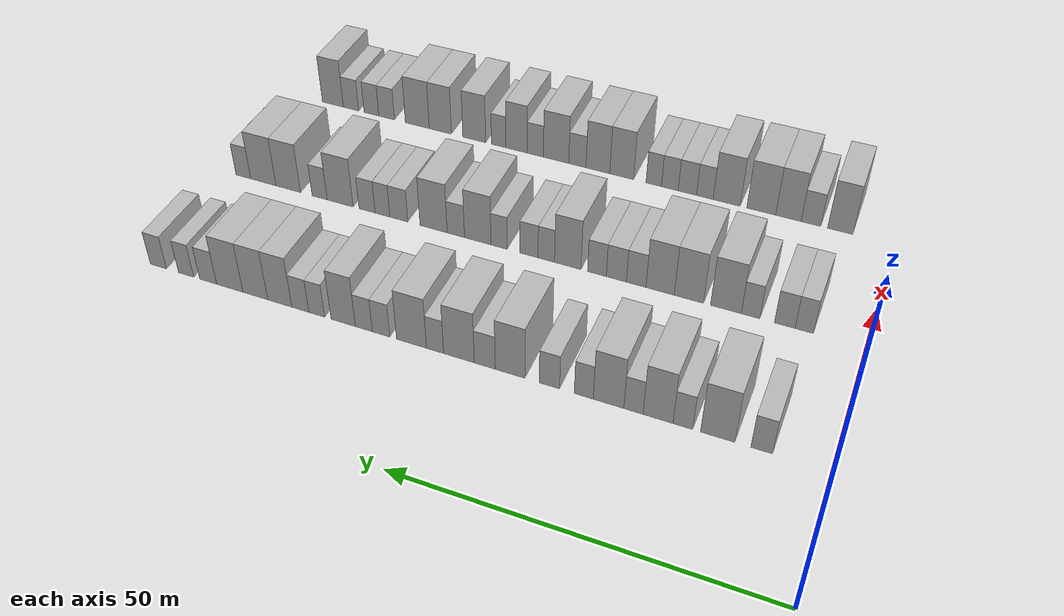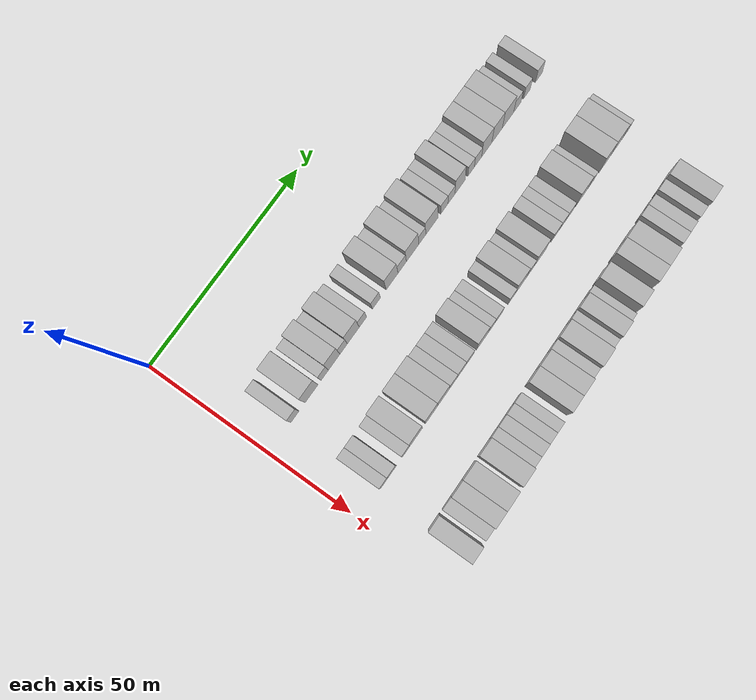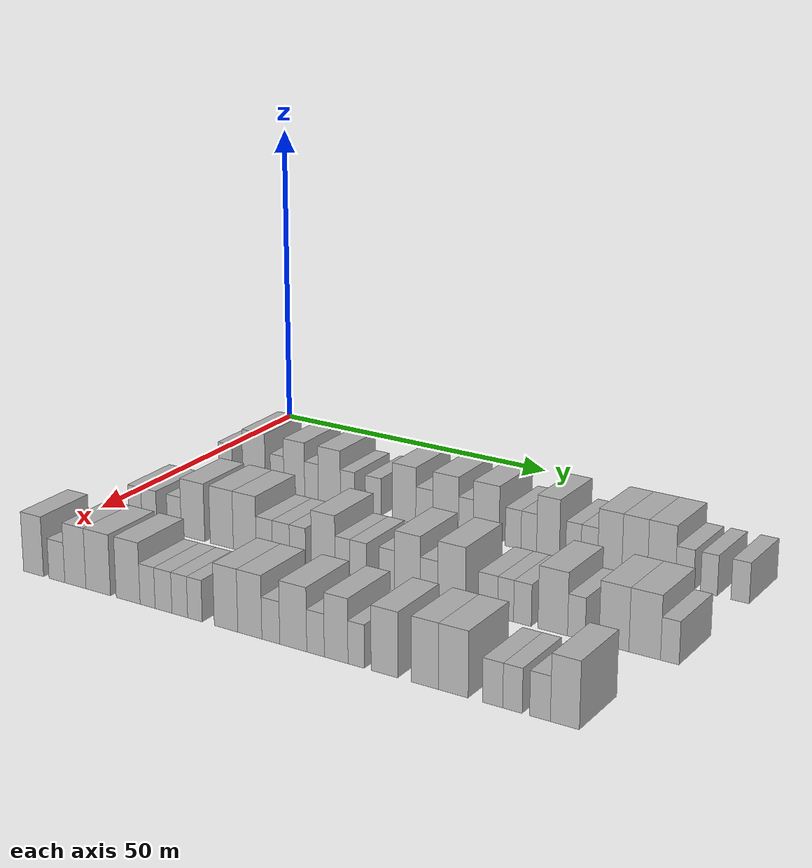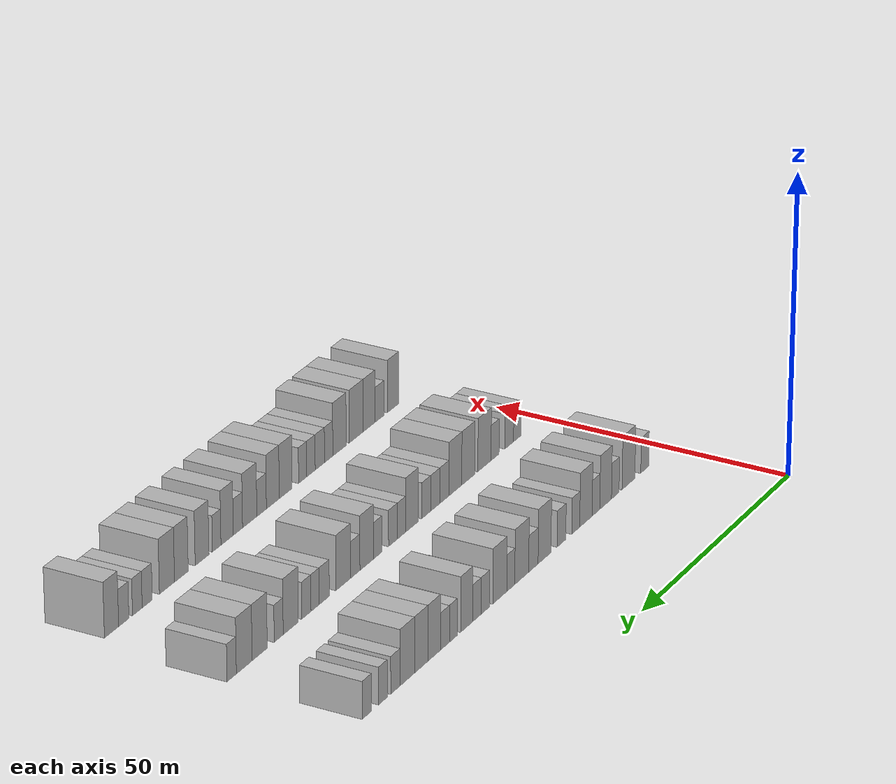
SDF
<sdf version="1.6">
 <world name="default">
  <model name="building_91">
   <static>1</static>
   <pose>25.0000 8.7173 0 0.000000 0.000000 0.000000</pose>
   <link name="link">
    <pose>0 0 3.00 0 0 0</pose>
    <collision name="collision"><geometry><box><size>10.0000 2.7109 6.0000</size></box></geometry></collision>
    <visual name="visual">
     <cast_shadows>0</cast_shadows>
     <geometry><box><size>10.0000 2.7109 6.0000</size></box></geometry>
     <material>
      <script>
       <uri>model://HANNAS_wall/materials/scripts</uri>
       <uri>model://HANNAS_wall/materials/textures</uri>
       <name>vrc/HANNAS_wall</name>
      </script>
     </material>
    </visual>
   </link>
  </model>
  <model name="building_92">
   <static>1</static>
   <pose>25.0000 14.2540 0 0.000000 0.000000 0.000000</pose>
   <link name="link">
    <pose>0 0 4.50 0 0 0</pose>
    <collision name="collision"><geometry><box><size>10.0000 4.3626 9.0000</size></box></geometry></collision>
    <visual name="visual">
     <cast_shadows>0</cast_shadows>
     <geometry><box><size>10.0000 4.3626 9.0000</size></box></geometry>
     <material>
      <script>
       <uri>model://HANNAS_wall/materials/scripts</uri>
       <uri>model://HANNAS_wall/materials/textures</uri>
       <name>vrc/HANNAS_wall</name>
      </script>
     </material>
    </visual>
   </link>
  </model>
  <model name="building_93">
   <static>1</static>
   <pose>25.0000 18.7086 0 0.000000 0.000000 0.000000</pose>
   <link name="link">
    <pose>0 0 3.00 0 0 0</pose>
    <collision name="collision"><geometry><box><size>10.0000 2.5465 6.0000</size></box></geometry></collision>
    <visual name="visual">
     <cast_shadows>0</cast_shadows>
     <geometry><box><size>10.0000 2.5465 6.0000</size></box></geometry>
     <material>
      <script>
       <uri>model://HANNAS_wall/materials/scripts</uri>
       <uri>model://HANNAS_wall/materials/textures</uri>
       <name>vrc/HANNAS_wall</name>
      </script>
     </material>
    </visual>
   </link>
  </model>
  <model name="building_94">
   <static>1</static>
   <pose>25.0000 21.9353 0 0.000000 0.000000 0.000000</pose>
   <link name="link">
    <pose>0 0 4.50 0 0 0</pose>
    <collision name="collision"><geometry><box><size>10.0000 3.9070 9.0000</size></box></geometry></collision>
    <visual name="visual">
     <cast_shadows>0</cast_shadows>
     <geometry><box><size>10.0000 3.9070 9.0000</size></box></geometry>
     <material>
      <script>
       <uri>model://HANNAS_wall/materials/scripts</uri>
       <uri>model://HANNAS_wall/materials/textures</uri>
       <name>vrc/HANNAS_wall</name>
      </script>
     </material>
    </visual>
   </link>
  </model>
  <model name="building_95">
   <static>1</static>
   <pose>25.0000 25.1588 0 0.000000 0.000000 0.000000</pose>
   <link name="link">
    <pose>0 0 3.00 0 0 0</pose>
    <collision name="collision"><geometry><box><size>10.0000 2.5399 6.0000</size></box></geometry></collision>
    <visual name="visual">
     <cast_shadows>0</cast_shadows>
     <geometry><box><size>10.0000 2.5399 6.0000</size></box></geometry>
     <material>
      <script>
       <uri>model://HANNAS_wall/materials/scripts</uri>
       <uri>model://HANNAS_wall/materials/textures</uri>
       <name>vrc/HANNAS_wall</name>
      </script>
     </material>
    </visual>
   </link>
  </model>
  <model name="building_96">
   <static>1</static>
   <pose>25.0000 28.4739 0 0.000000 0.000000 0.000000</pose>
   <link name="link">
    <pose>0 0 4.50 0 0 0</pose>
    <collision name="collision"><geometry><box><size>10.0000 4.0904 9.0000</size></box></geometry></collision>
    <visual name="visual">
     <cast_shadows>0</cast_shadows>
     <geometry><box><size>10.0000 4.0904 9.0000</size></box></geometry>
     <material>
      <script>
       <uri>model://HANNAS_wall/materials/scripts</uri>
       <uri>model://HANNAS_wall/materials/textures</uri>
       <name>vrc/HANNAS_wall</name>
      </script>
     </material>
    </visual>
   </link>
  </model>
  <model name="building_97">
   <static>1</static>
   <pose>25.0000 31.7958 0 0.000000 0.000000 0.000000</pose>
   <link name="link">
    <pose>0 0 3.00 0 0 0</pose>
    <collision name="collision"><geometry><box><size>10.0000 2.5533 6.0000</size></box></geometry></collision>
    <visual name="visual">
     <cast_shadows>0</cast_shadows>
     <geometry><box><size>10.0000 2.5533 6.0000</size></box></geometry>
     <material>
      <script>
       <uri>model://HANNAS_wall/materials/scripts</uri>
       <uri>model://HANNAS_wall/materials/textures</uri>
       <name>vrc/HANNAS_wall</name>
      </script>
     </material>
    </visual>
   </link>
  </model>
  <model name="building_98">
   <static>1</static>
   <pose>25.0000 36.4668 0 0.000000 0.000000 0.000000</pose>
   <link name="link">
    <pose>0 0 3.00 0 0 0</pose>
    <collision name="collision"><geometry><box><size>10.0000 2.7888 6.0000</size></box></geometry></collision>
    <visual name="visual">
     <cast_shadows>0</cast_shadows>
     <geometry><box><size>10.0000 2.7888 6.0000</size></box></geometry>
     <material>
      <script>
       <uri>model://HANNAS_wall/materials/scripts</uri>
       <uri>model://HANNAS_wall/materials/textures</uri>
       <name>vrc/HANNAS_wall</name>
      </script>
     </material>
    </visual>
   </link>
  </model>
  <model name="building_99">
   <static>1</static>
   <pose>25.0000 41.9392 0 0.000000 0.000000 0.000000</pose>
   <link name="link">
    <pose>0 0 4.50 0 0 0</pose>
    <collision name="collision"><geometry><box><size>10.0000 4.1560 9.0000</size></box></geometry></collision>
    <visual name="visual">
     <cast_shadows>0</cast_shadows>
     <geometry><box><size>10.0000 4.1560 9.0000</size></box></geometry>
     <material>
      <script>
       <uri>model://HANNAS_wall/materials/scripts</uri>
       <uri>model://HANNAS_wall/materials/textures</uri>
       <name>vrc/HANNAS_wall</name>
      </script>
     </material>
    </visual>
   </link>
  </model>
  <model name="building_100">
   <static>1</static>
   <pose>25.0000 45.5036 0 0.000000 0.000000 0.000000</pose>
   <link name="link">
    <pose>0 0 3.00 0 0 0</pose>
    <collision name="collision"><geometry><box><size>10.0000 2.9728 6.0000</size></box></geometry></collision>
    <visual name="visual">
     <cast_shadows>0</cast_shadows>
     <geometry><box><size>10.0000 2.9728 6.0000</size></box></geometry>
     <material>
      <script>
       <uri>model://HANNAS_wall/materials/scripts</uri>
       <uri>model://HANNAS_wall/materials/textures</uri>
       <name>vrc/HANNAS_wall</name>
      </script>
     </material>
    </visual>
   </link>
  </model>
  <model name="building_101">
   <static>1</static>
   <pose>25.0000 49.1935 0 0.000000 0.000000 0.000000</pose>
   <link name="link">
    <pose>0 0 4.50 0 0 0</pose>
    <collision name="collision"><geometry><box><size>10.0000 4.4071 9.0000</size></box></geometry></collision>
    <visual name="visual">
     <cast_shadows>0</cast_shadows>
     <geometry><box><size>10.0000 4.4071 9.0000</size></box></geometry>
     <material>
      <script>
       <uri>model://HANNAS_wall/materials/scripts</uri>
       <uri>model://HANNAS_wall/materials/textures</uri>
       <name>vrc/HANNAS_wall</name>
      </script>
     </material>
    </visual>
   </link>
  </model>
  <model name="building_102">
   <static>1</static>
   <pose>25.0000 52.6406 0 0.000000 0.000000 0.000000</pose>
   <link name="link">
    <pose>0 0 3.00 0 0 0</pose>
    <collision name="collision"><geometry><box><size>10.0000 2.4871 6.0000</size></box></geometry></collision>
    <visual name="visual">
     <cast_shadows>0</cast_shadows>
     <geometry><box><size>10.0000 2.4871 6.0000</size></box></geometry>
     <material>
      <script>
       <uri>model://HANNAS_wall/materials/scripts</uri>
       <uri>model://HANNAS_wall/materials/textures</uri>
       <name>vrc/HANNAS_wall</name>
      </script>
     </material>
    </visual>
   </link>
  </model>
  <model name="building_103">
   <static>1</static>
   <pose>25.0000 56.0800 0 0.000000 0.000000 0.000000</pose>
   <link name="link">
    <pose>0 0 4.50 0 0 0</pose>
    <collision name="collision"><geometry><box><size>10.0000 4.3916 9.0000</size></box></geometry></collision>
    <visual name="visual">
     <cast_shadows>0</cast_shadows>
     <geometry><box><size>10.0000 4.3916 9.0000</size></box></geometry>
     <material>
      <script>
       <uri>model://HANNAS_wall/materials/scripts</uri>
       <uri>model://HANNAS_wall/materials/textures</uri>
       <name>vrc/HANNAS_wall</name>
      </script>
     </material>
    </visual>
   </link>
  </model>
  <model name="building_104">
   <static>1</static>
   <pose>25.0000 60.5817 0 0.000000 0.000000 0.000000</pose>
   <link name="link">
    <pose>0 0 3.00 0 0 0</pose>
    <collision name="collision"><geometry><box><size>10.0000 2.6117 6.0000</size></box></geometry></collision>
    <visual name="visual">
     <cast_shadows>0</cast_shadows>
     <geometry><box><size>10.0000 2.6117 6.0000</size></box></geometry>
     <material>
      <script>
       <uri>model://HANNAS_wall/materials/scripts</uri>
       <uri>model://HANNAS_wall/materials/textures</uri>
       <name>vrc/HANNAS_wall</name>
      </script>
     </material>
    </visual>
   </link>
  </model>
  <model name="building_105">
   <static>1</static>
   <pose>25.0000 63.1682 0 0.000000 0.000000 0.000000</pose>
   <link name="link">
    <pose>0 0 3.00 0 0 0</pose>
    <collision name="collision"><geometry><box><size>10.0000 2.5613 6.0000</size></box></geometry></collision>
    <visual name="visual">
     <cast_shadows>0</cast_shadows>
     <geometry><box><size>10.0000 2.5613 6.0000</size></box></geometry>
     <material>
      <script>
       <uri>model://HANNAS_wall/materials/scripts</uri>
       <uri>model://HANNAS_wall/materials/textures</uri>
       <name>vrc/HANNAS_wall</name>
      </script>
     </material>
    </visual>
   </link>
  </model>
  <model name="building_106">
   <static>1</static>
   <pose>25.0000 66.2979 0 0.000000 0.000000 0.000000</pose>
   <link name="link">
    <pose>0 0 4.50 0 0 0</pose>
    <collision name="collision"><geometry><box><size>10.0000 3.6980 9.0000</size></box></geometry></collision>
    <visual name="visual">
     <cast_shadows>0</cast_shadows>
     <geometry><box><size>10.0000 3.6980 9.0000</size></box></geometry>
     <material>
      <script>
       <uri>model://HANNAS_wall/materials/scripts</uri>
       <uri>model://HANNAS_wall/materials/textures</uri>
       <name>vrc/HANNAS_wall</name>
      </script>
     </material>
    </visual>
   </link>
  </model>
  <model name="building_107">
   <static>1</static>
   <pose>25.0000 70.3660 0 0.000000 0.000000 0.000000</pose>
   <link name="link">
    <pose>0 0 3.00 0 0 0</pose>
    <collision name="collision"><geometry><box><size>10.0000 2.4382 6.0000</size></box></geometry></collision>
    <visual name="visual">
     <cast_shadows>0</cast_shadows>
     <geometry><box><size>10.0000 2.4382 6.0000</size></box></geometry>
     <material>
      <script>
       <uri>model://HANNAS_wall/materials/scripts</uri>
       <uri>model://HANNAS_wall/materials/textures</uri>
       <name>vrc/HANNAS_wall</name>
      </script>
     </material>
    </visual>
   </link>
  </model>
  <model name="building_108">
   <static>1</static>
   <pose>25.0000 72.9097 0 0.000000 0.000000 0.000000</pose>
   <link name="link">
    <pose>0 0 3.00 0 0 0</pose>
    <collision name="collision"><geometry><box><size>10.0000 2.6492 6.0000</size></box></geometry></collision>
    <visual name="visual">
     <cast_shadows>0</cast_shadows>
     <geometry><box><size>10.0000 2.6492 6.0000</size></box></geometry>
     <material>
      <script>
       <uri>model://HANNAS_wall/materials/scripts</uri>
       <uri>model://HANNAS_wall/materials/textures</uri>
       <name>vrc/HANNAS_wall</name>
      </script>
     </material>
    </visual>
   </link>
  </model>
  <model name="building_109">
   <static>1</static>
   <pose>25.0000 76.1327 0 0.000000 0.000000 0.000000</pose>
   <link name="link">
    <pose>0 0 4.50 0 0 0</pose>
    <collision name="collision"><geometry><box><size>10.0000 3.7969 9.0000</size></box></geometry></collision>
    <visual name="visual">
     <cast_shadows>0</cast_shadows>
     <geometry><box><size>10.0000 3.7969 9.0000</size></box></geometry>
     <material>
      <script>
       <uri>model://HANNAS_wall/materials/scripts</uri>
       <uri>model://HANNAS_wall/materials/textures</uri>
       <name>vrc/HANNAS_wall</name>
      </script>
     </material>
    </visual>
   </link>
  </model>
  <model name="building_110">
   <static>1</static>
   <pose>25.0000 80.0057 0 0.000000 0.000000 0.000000</pose>
   <link name="link">
    <pose>0 0 4.50 0 0 0</pose>
    <collision name="collision"><geometry><box><size>10.0000 3.9491 9.0000</size></box></geometry></collision>
    <visual name="visual">
     <cast_shadows>0</cast_shadows>
     <geometry><box><size>10.0000 3.9491 9.0000</size></box></geometry>
     <material>
      <script>
       <uri>model://HANNAS_wall/materials/scripts</uri>
       <uri>model://HANNAS_wall/materials/textures</uri>
       <name>vrc/HANNAS_wall</name>
      </script>
     </material>
    </visual>
   </link>
  </model>
  <model name="building_111">
   <static>1</static>
   <pose>25.0000 84.1084 0 0.000000 0.000000 0.000000</pose>
   <link name="link">
    <pose>0 0 4.50 0 0 0</pose>
    <collision name="collision"><geometry><box><size>10.0000 4.2565 9.0000</size></box></geometry></collision>
    <visual name="visual">
     <cast_shadows>0</cast_shadows>
     <geometry><box><size>10.0000 4.2565 9.0000</size></box></geometry>
     <material>
      <script>
       <uri>model://HANNAS_wall/materials/scripts</uri>
       <uri>model://HANNAS_wall/materials/textures</uri>
       <name>vrc/HANNAS_wall</name>
      </script>
     </material>
    </visual>
   </link>
  </model>
  <model name="building_112">
   <static>1</static>
   <pose>25.0000 87.6157 0 0.000000 0.000000 0.000000</pose>
   <link name="link">
    <pose>0 0 3.00 0 0 0</pose>
    <collision name="collision"><geometry><box><size>10.0000 2.7581 6.0000</size></box></geometry></collision>
    <visual name="visual">
     <cast_shadows>0</cast_shadows>
     <geometry><box><size>10.0000 2.7581 6.0000</size></box></geometry>
     <material>
      <script>
       <uri>model://HANNAS_wall/materials/scripts</uri>
       <uri>model://HANNAS_wall/materials/textures</uri>
       <name>vrc/HANNAS_wall</name>
      </script>
     </material>
    </visual>
   </link>
  </model>
  <model name="building_113">
   <static>1</static>
   <pose>25.0000 91.2480 0 0.000000 0.000000 0.000000</pose>
   <link name="link">
    <pose>0 0 3.00 0 0 0</pose>
    <collision name="collision"><geometry><box><size>10.0000 2.5063 6.0000</size></box></geometry></collision>
    <visual name="visual">
     <cast_shadows>0</cast_shadows>
     <geometry><box><size>10.0000 2.5063 6.0000</size></box></geometry>
     <material>
      <script>
       <uri>model://HANNAS_wall/materials/scripts</uri>
       <uri>model://HANNAS_wall/materials/textures</uri>
       <name>vrc/HANNAS_wall</name>
      </script>
     </material>
    </visual>
   </link>
  </model>
  <model name="building_114">
   <static>1</static>
   <pose>25.0000 95.8513 0 0.000000 0.000000 0.000000</pose>
   <link name="link">
    <pose>0 0 3.00 0 0 0</pose>
    <collision name="collision"><geometry><box><size>10.0000 2.7004 6.0000</size></box></geometry></collision>
    <visual name="visual">
     <cast_shadows>0</cast_shadows>
     <geometry><box><size>10.0000 2.7004 6.0000</size></box></geometry>
     <material>
      <script>
       <uri>model://HANNAS_wall/materials/scripts</uri>
       <uri>model://HANNAS_wall/materials/textures</uri>
       <name>vrc/HANNAS_wall</name>
      </script>
     </material>
    </visual>
   </link>
  </model>
  <model name="building_279">
   <static>1</static>
   <pose>47.0000 8.3746 0 0.000000 0.000000 0.000000</pose>
   <link name="link">
    <pose>0 0 3.00 0 0 0</pose>
    <collision name="collision"><geometry><box><size>10.0000 2.4925 6.0000</size></box></geometry></collision>
    <visual name="visual">
     <cast_shadows>0</cast_shadows>
     <geometry><box><size>10.0000 2.4925 6.0000</size></box></geometry>
     <material>
      <script>
       <uri>model://HANNAS_wall/materials/scripts</uri>
       <uri>model://HANNAS_wall/materials/textures</uri>
       <name>vrc/HANNAS_wall</name>
      </script>
     </material>
    </visual>
   </link>
  </model>
  <model name="building_280">
   <static>1</static>
   <pose>47.0000 11.0298 0 0.000000 0.000000 0.000000</pose>
   <link name="link">
    <pose>0 0 3.00 0 0 0</pose>
    <collision name="collision"><geometry><box><size>10.0000 2.8179 6.0000</size></box></geometry></collision>
    <visual name="visual">
     <cast_shadows>0</cast_shadows>
     <geometry><box><size>10.0000 2.8179 6.0000</size></box></geometry>
     <material>
      <script>
       <uri>model://HANNAS_wall/materials/scripts</uri>
       <uri>model://HANNAS_wall/materials/textures</uri>
       <name>vrc/HANNAS_wall</name>
      </script>
     </material>
    </visual>
   </link>
  </model>
  <model name="building_281">
   <static>1</static>
   <pose>47.0000 15.7322 0 0.000000 0.000000 0.000000</pose>
   <link name="link">
    <pose>0 0 3.00 0 0 0</pose>
    <collision name="collision"><geometry><box><size>10.0000 2.5869 6.0000</size></box></geometry></collision>
    <visual name="visual">
     <cast_shadows>0</cast_shadows>
     <geometry><box><size>10.0000 2.5869 6.0000</size></box></geometry>
     <material>
      <script>
       <uri>model://HANNAS_wall/materials/scripts</uri>
       <uri>model://HANNAS_wall/materials/textures</uri>
       <name>vrc/HANNAS_wall</name>
      </script>
     </material>
    </visual>
   </link>
  </model>
  <model name="building_282">
   <static>1</static>
   <pose>47.0000 19.1814 0 0.000000 0.000000 0.000000</pose>
   <link name="link">
    <pose>0 0 4.50 0 0 0</pose>
    <collision name="collision"><geometry><box><size>10.0000 4.3114 9.0000</size></box></geometry></collision>
    <visual name="visual">
     <cast_shadows>0</cast_shadows>
     <geometry><box><size>10.0000 4.3114 9.0000</size></box></geometry>
     <material>
      <script>
       <uri>model://HANNAS_wall/materials/scripts</uri>
       <uri>model://HANNAS_wall/materials/textures</uri>
       <name>vrc/HANNAS_wall</name>
      </script>
     </material>
    </visual>
   </link>
  </model>
  <model name="building_283">
   <static>1</static>
   <pose>47.0000 24.4289 0 0.000000 0.000000 0.000000</pose>
   <link name="link">
    <pose>0 0 4.50 0 0 0</pose>
    <collision name="collision"><geometry><box><size>10.0000 4.1835 9.0000</size></box></geometry></collision>
    <visual name="visual">
     <cast_shadows>0</cast_shadows>
     <geometry><box><size>10.0000 4.1835 9.0000</size></box></geometry>
     <material>
      <script>
       <uri>model://HANNAS_wall/materials/scripts</uri>
       <uri>model://HANNAS_wall/materials/textures</uri>
       <name>vrc/HANNAS_wall</name>
      </script>
     </material>
    </visual>
   </link>
  </model>
  <model name="building_284">
   <static>1</static>
   <pose>47.0000 28.5685 0 0.000000 0.000000 0.000000</pose>
   <link name="link">
    <pose>0 0 4.50 0 0 0</pose>
    <collision name="collision"><geometry><box><size>10.0000 4.0956 9.0000</size></box></geometry></collision>
    <visual name="visual">
     <cast_shadows>0</cast_shadows>
     <geometry><box><size>10.0000 4.0956 9.0000</size></box></geometry>
     <material>
      <script>
       <uri>model://HANNAS_wall/materials/scripts</uri>
       <uri>model://HANNAS_wall/materials/textures</uri>
       <name>vrc/HANNAS_wall</name>
      </script>
     </material>
    </visual>
   </link>
  </model>
  <model name="building_285">
   <static>1</static>
   <pose>47.0000 32.0457 0 0.000000 0.000000 0.000000</pose>
   <link name="link">
    <pose>0 0 3.00 0 0 0</pose>
    <collision name="collision"><geometry><box><size>10.0000 2.8588 6.0000</size></box></geometry></collision>
    <visual name="visual">
     <cast_shadows>0</cast_shadows>
     <geometry><box><size>10.0000 2.8588 6.0000</size></box></geometry>
     <material>
      <script>
       <uri>model://HANNAS_wall/materials/scripts</uri>
       <uri>model://HANNAS_wall/materials/textures</uri>
       <name>vrc/HANNAS_wall</name>
      </script>
     </material>
    </visual>
   </link>
  </model>
  <model name="building_286">
   <static>1</static>
   <pose>47.0000 34.9705 0 0.000000 0.000000 0.000000</pose>
   <link name="link">
    <pose>0 0 3.00 0 0 0</pose>
    <collision name="collision"><geometry><box><size>10.0000 2.9909 6.0000</size></box></geometry></collision>
    <visual name="visual">
     <cast_shadows>0</cast_shadows>
     <geometry><box><size>10.0000 2.9909 6.0000</size></box></geometry>
     <material>
      <script>
       <uri>model://HANNAS_wall/materials/scripts</uri>
       <uri>model://HANNAS_wall/materials/textures</uri>
       <name>vrc/HANNAS_wall</name>
      </script>
     </material>
    </visual>
   </link>
  </model>
  <model name="building_287">
   <static>1</static>
   <pose>47.0000 37.8488 0 0.000000 0.000000 0.000000</pose>
   <link name="link">
    <pose>0 0 3.00 0 0 0</pose>
    <collision name="collision"><geometry><box><size>10.0000 2.7656 6.0000</size></box></geometry></collision>
    <visual name="visual">
     <cast_shadows>0</cast_shadows>
     <geometry><box><size>10.0000 2.7656 6.0000</size></box></geometry>
     <material>
      <script>
       <uri>model://HANNAS_wall/materials/scripts</uri>
       <uri>model://HANNAS_wall/materials/textures</uri>
       <name>vrc/HANNAS_wall</name>
      </script>
     </material>
    </visual>
   </link>
  </model>
  <model name="building_288">
   <static>1</static>
   <pose>47.0000 42.2378 0 0.000000 0.000000 0.000000</pose>
   <link name="link">
    <pose>0 0 4.50 0 0 0</pose>
    <collision name="collision"><geometry><box><size>10.0000 4.0125 9.0000</size></box></geometry></collision>
    <visual name="visual">
     <cast_shadows>0</cast_shadows>
     <geometry><box><size>10.0000 4.0125 9.0000</size></box></geometry>
     <material>
      <script>
       <uri>model://HANNAS_wall/materials/scripts</uri>
       <uri>model://HANNAS_wall/materials/textures</uri>
       <name>vrc/HANNAS_wall</name>
      </script>
     </material>
    </visual>
   </link>
  </model>
  <model name="building_289">
   <static>1</static>
   <pose>47.0000 45.4963 0 0.000000 0.000000 0.000000</pose>
   <link name="link">
    <pose>0 0 3.00 0 0 0</pose>
    <collision name="collision"><geometry><box><size>10.0000 2.5044 6.0000</size></box></geometry></collision>
    <visual name="visual">
     <cast_shadows>0</cast_shadows>
     <geometry><box><size>10.0000 2.5044 6.0000</size></box></geometry>
     <material>
      <script>
       <uri>model://HANNAS_wall/materials/scripts</uri>
       <uri>model://HANNAS_wall/materials/textures</uri>
       <name>vrc/HANNAS_wall</name>
      </script>
     </material>
    </visual>
   </link>
  </model>
  <model name="building_290">
   <static>1</static>
   <pose>47.0000 48.1372 0 0.000000 0.000000 0.000000</pose>
   <link name="link">
    <pose>0 0 3.00 0 0 0</pose>
    <collision name="collision"><geometry><box><size>10.0000 2.7775 6.0000</size></box></geometry></collision>
    <visual name="visual">
     <cast_shadows>0</cast_shadows>
     <geometry><box><size>10.0000 2.7775 6.0000</size></box></geometry>
     <material>
      <script>
       <uri>model://HANNAS_wall/materials/scripts</uri>
       <uri>model://HANNAS_wall/materials/textures</uri>
       <name>vrc/HANNAS_wall</name>
      </script>
     </material>
    </visual>
   </link>
  </model>
  <model name="building_291">
   <static>1</static>
   <pose>47.0000 52.7932 0 0.000000 0.000000 0.000000</pose>
   <link name="link">
    <pose>0 0 3.00 0 0 0</pose>
    <collision name="collision"><geometry><box><size>10.0000 2.5344 6.0000</size></box></geometry></collision>
    <visual name="visual">
     <cast_shadows>0</cast_shadows>
     <geometry><box><size>10.0000 2.5344 6.0000</size></box></geometry>
     <material>
      <script>
       <uri>model://HANNAS_wall/materials/scripts</uri>
       <uri>model://HANNAS_wall/materials/textures</uri>
       <name>vrc/HANNAS_wall</name>
      </script>
     </material>
    </visual>
   </link>
  </model>
  <model name="building_292">
   <static>1</static>
   <pose>47.0000 56.1526 0 0.000000 0.000000 0.000000</pose>
   <link name="link">
    <pose>0 0 4.50 0 0 0</pose>
    <collision name="collision"><geometry><box><size>10.0000 4.1842 9.0000</size></box></geometry></collision>
    <visual name="visual">
     <cast_shadows>0</cast_shadows>
     <geometry><box><size>10.0000 4.1842 9.0000</size></box></geometry>
     <material>
      <script>
       <uri>model://HANNAS_wall/materials/scripts</uri>
       <uri>model://HANNAS_wall/materials/textures</uri>
       <name>vrc/HANNAS_wall</name>
      </script>
     </material>
    </visual>
   </link>
  </model>
  <model name="building_293">
   <static>1</static>
   <pose>47.0000 59.6307 0 0.000000 0.000000 0.000000</pose>
   <link name="link">
    <pose>0 0 3.00 0 0 0</pose>
    <collision name="collision"><geometry><box><size>10.0000 2.7721 6.0000</size></box></geometry></collision>
    <visual name="visual">
     <cast_shadows>0</cast_shadows>
     <geometry><box><size>10.0000 2.7721 6.0000</size></box></geometry>
     <material>
      <script>
       <uri>model://HANNAS_wall/materials/scripts</uri>
       <uri>model://HANNAS_wall/materials/textures</uri>
       <name>vrc/HANNAS_wall</name>
      </script>
     </material>
    </visual>
   </link>
  </model>
  <model name="building_294">
   <static>1</static>
   <pose>47.0000 63.2047 0 0.000000 0.000000 0.000000</pose>
   <link name="link">
    <pose>0 0 4.50 0 0 0</pose>
    <collision name="collision"><geometry><box><size>10.0000 4.3760 9.0000</size></box></geometry></collision>
    <visual name="visual">
     <cast_shadows>0</cast_shadows>
     <geometry><box><size>10.0000 4.3760 9.0000</size></box></geometry>
     <material>
      <script>
       <uri>model://HANNAS_wall/materials/scripts</uri>
       <uri>model://HANNAS_wall/materials/textures</uri>
       <name>vrc/HANNAS_wall</name>
      </script>
     </material>
    </visual>
   </link>
  </model>
  <model name="building_295">
   <static>1</static>
   <pose>47.0000 68.8754 0 0.000000 0.000000 0.000000</pose>
   <link name="link">
    <pose>0 0 3.00 0 0 0</pose>
    <collision name="collision"><geometry><box><size>10.0000 2.9655 6.0000</size></box></geometry></collision>
    <visual name="visual">
     <cast_shadows>0</cast_shadows>
     <geometry><box><size>10.0000 2.9655 6.0000</size></box></geometry>
     <material>
      <script>
       <uri>model://HANNAS_wall/materials/scripts</uri>
       <uri>model://HANNAS_wall/materials/textures</uri>
       <name>vrc/HANNAS_wall</name>
      </script>
     </material>
    </visual>
   </link>
  </model>
  <model name="building_296">
   <static>1</static>
   <pose>47.0000 71.5761 0 0.000000 0.000000 0.000000</pose>
   <link name="link">
    <pose>0 0 3.00 0 0 0</pose>
    <collision name="collision"><geometry><box><size>10.0000 2.4359 6.0000</size></box></geometry></collision>
    <visual name="visual">
     <cast_shadows>0</cast_shadows>
     <geometry><box><size>10.0000 2.4359 6.0000</size></box></geometry>
     <material>
      <script>
       <uri>model://HANNAS_wall/materials/scripts</uri>
       <uri>model://HANNAS_wall/materials/textures</uri>
       <name>vrc/HANNAS_wall</name>
      </script>
     </material>
    </visual>
   </link>
  </model>
  <model name="building_297">
   <static>1</static>
   <pose>47.0000 74.1330 0 0.000000 0.000000 0.000000</pose>
   <link name="link">
    <pose>0 0 3.00 0 0 0</pose>
    <collision name="collision"><geometry><box><size>10.0000 2.6777 6.0000</size></box></geometry></collision>
    <visual name="visual">
     <cast_shadows>0</cast_shadows>
     <geometry><box><size>10.0000 2.6777 6.0000</size></box></geometry>
     <material>
      <script>
       <uri>model://HANNAS_wall/materials/scripts</uri>
       <uri>model://HANNAS_wall/materials/textures</uri>
       <name>vrc/HANNAS_wall</name>
      </script>
     </material>
    </visual>
   </link>
  </model>
  <model name="building_298">
   <static>1</static>
   <pose>47.0000 78.6689 0 0.000000 0.000000 0.000000</pose>
   <link name="link">
    <pose>0 0 4.50 0 0 0</pose>
    <collision name="collision"><geometry><box><size>10.0000 4.3942 9.0000</size></box></geometry></collision>
    <visual name="visual">
     <cast_shadows>0</cast_shadows>
     <geometry><box><size>10.0000 4.3942 9.0000</size></box></geometry>
     <material>
      <script>
       <uri>model://HANNAS_wall/materials/scripts</uri>
       <uri>model://HANNAS_wall/materials/textures</uri>
       <name>vrc/HANNAS_wall</name>
      </script>
     </material>
    </visual>
   </link>
  </model>
  <model name="building_299">
   <static>1</static>
   <pose>47.0000 82.1569 0 0.000000 0.000000 0.000000</pose>
   <link name="link">
    <pose>0 0 3.00 0 0 0</pose>
    <collision name="collision"><geometry><box><size>10.0000 2.5818 6.0000</size></box></geometry></collision>
    <visual name="visual">
     <cast_shadows>0</cast_shadows>
     <geometry><box><size>10.0000 2.5818 6.0000</size></box></geometry>
     <material>
      <script>
       <uri>model://HANNAS_wall/materials/scripts</uri>
       <uri>model://HANNAS_wall/materials/textures</uri>
       <name>vrc/HANNAS_wall</name>
      </script>
     </material>
    </visual>
   </link>
  </model>
  <model name="building_300">
   <static>1</static>
   <pose>47.0000 87.5886 0 0.000000 0.000000 0.000000</pose>
   <link name="link">
    <pose>0 0 4.50 0 0 0</pose>
    <collision name="collision"><geometry><box><size>10.0000 4.2814 9.0000</size></box></geometry></collision>
    <visual name="visual">
     <cast_shadows>0</cast_shadows>
     <geometry><box><size>10.0000 4.2814 9.0000</size></box></geometry>
     <material>
      <script>
       <uri>model://HANNAS_wall/materials/scripts</uri>
       <uri>model://HANNAS_wall/materials/textures</uri>
       <name>vrc/HANNAS_wall</name>
      </script>
     </material>
    </visual>
   </link>
  </model>
  <model name="building_301">
   <static>1</static>
   <pose>47.0000 91.9565 0 0.000000 0.000000 0.000000</pose>
   <link name="link">
    <pose>0 0 4.50 0 0 0</pose>
    <collision name="collision"><geometry><box><size>10.0000 4.4544 9.0000</size></box></geometry></collision>
    <visual name="visual">
     <cast_shadows>0</cast_shadows>
     <geometry><box><size>10.0000 4.4544 9.0000</size></box></geometry>
     <material>
      <script>
       <uri>model://HANNAS_wall/materials/scripts</uri>
       <uri>model://HANNAS_wall/materials/textures</uri>
       <name>vrc/HANNAS_wall</name>
      </script>
     </material>
    </visual>
   </link>
  </model>
  <model name="building_302">
   <static>1</static>
   <pose>47.0000 95.4833 0 0.000000 0.000000 0.000000</pose>
   <link name="link">
    <pose>0 0 3.00 0 0 0</pose>
    <collision name="collision"><geometry><box><size>10.0000 2.5993 6.0000</size></box></geometry></collision>
    <visual name="visual">
     <cast_shadows>0</cast_shadows>
     <geometry><box><size>10.0000 2.5993 6.0000</size></box></geometry>
     <material>
      <script>
       <uri>model://HANNAS_wall/materials/scripts</uri>
       <uri>model://HANNAS_wall/materials/textures</uri>
       <name>vrc/HANNAS_wall</name>
      </script>
     </material>
    </visual>
   </link>
  </model>
  <model name="building_469">
   <static>1</static>
   <pose>69.0000 7.9628 0 0.000000 0.000000 0.000000</pose>
   <link name="link">
    <pose>0 0 4.50 0 0 0</pose>
    <collision name="collision"><geometry><box><size>10.0000 3.7076 9.0000</size></box></geometry></collision>
    <visual name="visual">
     <cast_shadows>0</cast_shadows>
     <geometry><box><size>10.0000 3.7076 9.0000</size></box></geometry>
     <material>
      <script>
       <uri>model://HANNAS_wall/materials/scripts</uri>
       <uri>model://HANNAS_wall/materials/textures</uri>
       <name>vrc/HANNAS_wall</name>
      </script>
     </material>
    </visual>
   </link>
  </model>
  <model name="building_470">
   <static>1</static>
   <pose>69.0000 12.2753 0 0.000000 0.000000 0.000000</pose>
   <link name="link">
    <pose>0 0 3.00 0 0 0</pose>
    <collision name="collision"><geometry><box><size>10.0000 2.9174 6.0000</size></box></geometry></collision>
    <visual name="visual">
     <cast_shadows>0</cast_shadows>
     <geometry><box><size>10.0000 2.9174 6.0000</size></box></geometry>
     <material>
      <script>
       <uri>model://HANNAS_wall/materials/scripts</uri>
       <uri>model://HANNAS_wall/materials/textures</uri>
       <name>vrc/HANNAS_wall</name>
      </script>
     </material>
    </visual>
   </link>
  </model>
  <model name="building_471">
   <static>1</static>
   <pose>69.0000 15.6482 0 0.000000 0.000000 0.000000</pose>
   <link name="link">
    <pose>0 0 4.50 0 0 0</pose>
    <collision name="collision"><geometry><box><size>10.0000 3.8284 9.0000</size></box></geometry></collision>
    <visual name="visual">
     <cast_shadows>0</cast_shadows>
     <geometry><box><size>10.0000 3.8284 9.0000</size></box></geometry>
     <material>
      <script>
       <uri>model://HANNAS_wall/materials/scripts</uri>
       <uri>model://HANNAS_wall/materials/textures</uri>
       <name>vrc/HANNAS_wall</name>
      </script>
     </material>
    </visual>
   </link>
  </model>
  <model name="building_472">
   <static>1</static>
   <pose>69.0000 19.7502 0 0.000000 0.000000 0.000000</pose>
   <link name="link">
    <pose>0 0 4.50 0 0 0</pose>
    <collision name="collision"><geometry><box><size>10.0000 4.3755 9.0000</size></box></geometry></collision>
    <visual name="visual">
     <cast_shadows>0</cast_shadows>
     <geometry><box><size>10.0000 4.3755 9.0000</size></box></geometry>
     <material>
      <script>
       <uri>model://HANNAS_wall/materials/scripts</uri>
       <uri>model://HANNAS_wall/materials/textures</uri>
       <name>vrc/HANNAS_wall</name>
      </script>
     </material>
    </visual>
   </link>
  </model>
  <model name="building_473">
   <static>1</static>
   <pose>69.0000 25.0316 0 0.000000 0.000000 0.000000</pose>
   <link name="link">
    <pose>0 0 4.50 0 0 0</pose>
    <collision name="collision"><geometry><box><size>10.0000 4.1874 9.0000</size></box></geometry></collision>
    <visual name="visual">
     <cast_shadows>0</cast_shadows>
     <geometry><box><size>10.0000 4.1874 9.0000</size></box></geometry>
     <material>
      <script>
       <uri>model://HANNAS_wall/materials/scripts</uri>
       <uri>model://HANNAS_wall/materials/textures</uri>
       <name>vrc/HANNAS_wall</name>
      </script>
     </material>
    </visual>
   </link>
  </model>
  <model name="building_474">
   <static>1</static>
   <pose>69.0000 28.4220 0 0.000000 0.000000 0.000000</pose>
   <link name="link">
    <pose>0 0 3.00 0 0 0</pose>
    <collision name="collision"><geometry><box><size>10.0000 2.5934 6.0000</size></box></geometry></collision>
    <visual name="visual">
     <cast_shadows>0</cast_shadows>
     <geometry><box><size>10.0000 2.5934 6.0000</size></box></geometry>
     <material>
      <script>
       <uri>model://HANNAS_wall/materials/scripts</uri>
       <uri>model://HANNAS_wall/materials/textures</uri>
       <name>vrc/HANNAS_wall</name>
      </script>
     </material>
    </visual>
   </link>
  </model>
  <model name="building_475">
   <static>1</static>
   <pose>69.0000 31.1617 0 0.000000 0.000000 0.000000</pose>
   <link name="link">
    <pose>0 0 3.00 0 0 0</pose>
    <collision name="collision"><geometry><box><size>10.0000 2.8861 6.0000</size></box></geometry></collision>
    <visual name="visual">
     <cast_shadows>0</cast_shadows>
     <geometry><box><size>10.0000 2.8861 6.0000</size></box></geometry>
     <material>
      <script>
       <uri>model://HANNAS_wall/materials/scripts</uri>
       <uri>model://HANNAS_wall/materials/textures</uri>
       <name>vrc/HANNAS_wall</name>
      </script>
     </material>
    </visual>
   </link>
  </model>
  <model name="building_476">
   <static>1</static>
   <pose>69.0000 33.9303 0 0.000000 0.000000 0.000000</pose>
   <link name="link">
    <pose>0 0 3.00 0 0 0</pose>
    <collision name="collision"><geometry><box><size>10.0000 2.6510 6.0000</size></box></geometry></collision>
    <visual name="visual">
     <cast_shadows>0</cast_shadows>
     <geometry><box><size>10.0000 2.6510 6.0000</size></box></geometry>
     <material>
      <script>
       <uri>model://HANNAS_wall/materials/scripts</uri>
       <uri>model://HANNAS_wall/materials/textures</uri>
       <name>vrc/HANNAS_wall</name>
      </script>
     </material>
    </visual>
   </link>
  </model>
  <model name="building_477">
   <static>1</static>
   <pose>69.0000 36.4796 0 0.000000 0.000000 0.000000</pose>
   <link name="link">
    <pose>0 0 3.00 0 0 0</pose>
    <collision name="collision"><geometry><box><size>10.0000 2.4475 6.0000</size></box></geometry></collision>
    <visual name="visual">
     <cast_shadows>0</cast_shadows>
     <geometry><box><size>10.0000 2.4475 6.0000</size></box></geometry>
     <material>
      <script>
       <uri>model://HANNAS_wall/materials/scripts</uri>
       <uri>model://HANNAS_wall/materials/textures</uri>
       <name>vrc/HANNAS_wall</name>
      </script>
     </material>
    </visual>
   </link>
  </model>
  <model name="building_478">
   <static>1</static>
   <pose>69.0000 41.6393 0 0.000000 0.000000 0.000000</pose>
   <link name="link">
    <pose>0 0 4.50 0 0 0</pose>
    <collision name="collision"><geometry><box><size>10.0000 3.8719 9.0000</size></box></geometry></collision>
    <visual name="visual">
     <cast_shadows>0</cast_shadows>
     <geometry><box><size>10.0000 3.8719 9.0000</size></box></geometry>
     <material>
      <script>
       <uri>model://HANNAS_wall/materials/scripts</uri>
       <uri>model://HANNAS_wall/materials/textures</uri>
       <name>vrc/HANNAS_wall</name>
      </script>
     </material>
    </visual>
   </link>
  </model>
  <model name="building_479">
   <static>1</static>
   <pose>69.0000 45.5235 0 0.000000 0.000000 0.000000</pose>
   <link name="link">
    <pose>0 0 4.50 0 0 0</pose>
    <collision name="collision"><geometry><box><size>10.0000 3.8965 9.0000</size></box></geometry></collision>
    <visual name="visual">
     <cast_shadows>0</cast_shadows>
     <geometry><box><size>10.0000 3.8965 9.0000</size></box></geometry>
     <material>
      <script>
       <uri>model://HANNAS_wall/materials/scripts</uri>
       <uri>model://HANNAS_wall/materials/textures</uri>
       <name>vrc/HANNAS_wall</name>
      </script>
     </material>
    </visual>
   </link>
  </model>
  <model name="building_480">
   <static>1</static>
   <pose>69.0000 48.8949 0 0.000000 0.000000 0.000000</pose>
   <link name="link">
    <pose>0 0 3.00 0 0 0</pose>
    <collision name="collision"><geometry><box><size>10.0000 2.8464 6.0000</size></box></geometry></collision>
    <visual name="visual">
     <cast_shadows>0</cast_shadows>
     <geometry><box><size>10.0000 2.8464 6.0000</size></box></geometry>
     <material>
      <script>
       <uri>model://HANNAS_wall/materials/scripts</uri>
       <uri>model://HANNAS_wall/materials/textures</uri>
       <name>vrc/HANNAS_wall</name>
      </script>
     </material>
    </visual>
   </link>
  </model>
  <model name="building_481">
   <static>1</static>
   <pose>69.0000 52.4460 0 0.000000 0.000000 0.000000</pose>
   <link name="link">
    <pose>0 0 4.50 0 0 0</pose>
    <collision name="collision"><geometry><box><size>10.0000 4.2558 9.0000</size></box></geometry></collision>
    <visual name="visual">
     <cast_shadows>0</cast_shadows>
     <geometry><box><size>10.0000 4.2558 9.0000</size></box></geometry>
     <material>
      <script>
       <uri>model://HANNAS_wall/materials/scripts</uri>
       <uri>model://HANNAS_wall/materials/textures</uri>
       <name>vrc/HANNAS_wall</name>
      </script>
     </material>
    </visual>
   </link>
  </model>
  <model name="building_482">
   <static>1</static>
   <pose>69.0000 55.9337 0 0.000000 0.000000 0.000000</pose>
   <link name="link">
    <pose>0 0 3.00 0 0 0</pose>
    <collision name="collision"><geometry><box><size>10.0000 2.7197 6.0000</size></box></geometry></collision>
    <visual name="visual">
     <cast_shadows>0</cast_shadows>
     <geometry><box><size>10.0000 2.7197 6.0000</size></box></geometry>
     <material>
      <script>
       <uri>model://HANNAS_wall/materials/scripts</uri>
       <uri>model://HANNAS_wall/materials/textures</uri>
       <name>vrc/HANNAS_wall</name>
      </script>
     </material>
    </visual>
   </link>
  </model>
  <model name="building_483">
   <static>1</static>
   <pose>69.0000 59.1114 0 0.000000 0.000000 0.000000</pose>
   <link name="link">
    <pose>0 0 4.50 0 0 0</pose>
    <collision name="collision"><geometry><box><size>10.0000 3.6357 9.0000</size></box></geometry></collision>
    <visual name="visual">
     <cast_shadows>0</cast_shadows>
     <geometry><box><size>10.0000 3.6357 9.0000</size></box></geometry>
     <material>
      <script>
       <uri>model://HANNAS_wall/materials/scripts</uri>
       <uri>model://HANNAS_wall/materials/textures</uri>
       <name>vrc/HANNAS_wall</name>
      </script>
     </material>
    </visual>
   </link>
  </model>
  <model name="building_484">
   <static>1</static>
   <pose>69.0000 62.1733 0 0.000000 0.000000 0.000000</pose>
   <link name="link">
    <pose>0 0 3.00 0 0 0</pose>
    <collision name="collision"><geometry><box><size>10.0000 2.4882 6.0000</size></box></geometry></collision>
    <visual name="visual">
     <cast_shadows>0</cast_shadows>
     <geometry><box><size>10.0000 2.4882 6.0000</size></box></geometry>
     <material>
      <script>
       <uri>model://HANNAS_wall/materials/scripts</uri>
       <uri>model://HANNAS_wall/materials/textures</uri>
       <name>vrc/HANNAS_wall</name>
      </script>
     </material>
    </visual>
   </link>
  </model>
  <model name="building_485">
   <static>1</static>
   <pose>69.0000 66.4057 0 0.000000 0.000000 0.000000</pose>
   <link name="link">
    <pose>0 0 4.50 0 0 0</pose>
    <collision name="collision"><geometry><box><size>10.0000 3.9766 9.0000</size></box></geometry></collision>
    <visual name="visual">
     <cast_shadows>0</cast_shadows>
     <geometry><box><size>10.0000 3.9766 9.0000</size></box></geometry>
     <material>
      <script>
       <uri>model://HANNAS_wall/materials/scripts</uri>
       <uri>model://HANNAS_wall/materials/textures</uri>
       <name>vrc/HANNAS_wall</name>
      </script>
     </material>
    </visual>
   </link>
  </model>
  <model name="building_486">
   <static>1</static>
   <pose>69.0000 72.3485 0 0.000000 0.000000 0.000000</pose>
   <link name="link">
    <pose>0 0 4.50 0 0 0</pose>
    <collision name="collision"><geometry><box><size>10.0000 3.9089 9.0000</size></box></geometry></collision>
    <visual name="visual">
     <cast_shadows>0</cast_shadows>
     <geometry><box><size>10.0000 3.9089 9.0000</size></box></geometry>
     <material>
      <script>
       <uri>model://HANNAS_wall/materials/scripts</uri>
       <uri>model://HANNAS_wall/materials/textures</uri>
       <name>vrc/HANNAS_wall</name>
      </script>
     </material>
    </visual>
   </link>
  </model>
  <model name="building_487">
   <static>1</static>
   <pose>69.0000 76.4464 0 0.000000 0.000000 0.000000</pose>
   <link name="link">
    <pose>0 0 4.50 0 0 0</pose>
    <collision name="collision"><geometry><box><size>10.0000 4.2869 9.0000</size></box></geometry></collision>
    <visual name="visual">
     <cast_shadows>0</cast_shadows>
     <geometry><box><size>10.0000 4.2869 9.0000</size></box></geometry>
     <material>
      <script>
       <uri>model://HANNAS_wall/materials/scripts</uri>
       <uri>model://HANNAS_wall/materials/textures</uri>
       <name>vrc/HANNAS_wall</name>
      </script>
     </material>
    </visual>
   </link>
  </model>
  <model name="building_488">
   <static>1</static>
   <pose>69.0000 82.0098 0 0.000000 0.000000 0.000000</pose>
   <link name="link">
    <pose>0 0 3.00 0 0 0</pose>
    <collision name="collision"><geometry><box><size>10.0000 2.8400 6.0000</size></box></geometry></collision>
    <visual name="visual">
     <cast_shadows>0</cast_shadows>
     <geometry><box><size>10.0000 2.8400 6.0000</size></box></geometry>
     <material>
      <script>
       <uri>model://HANNAS_wall/materials/scripts</uri>
       <uri>model://HANNAS_wall/materials/textures</uri>
       <name>vrc/HANNAS_wall</name>
      </script>
     </material>
    </visual>
   </link>
  </model>
  <model name="building_489">
   <static>1</static>
   <pose>69.0000 84.7767 0 0.000000 0.000000 0.000000</pose>
   <link name="link">
    <pose>0 0 3.00 0 0 0</pose>
    <collision name="collision"><geometry><box><size>10.0000 2.6938 6.0000</size></box></geometry></collision>
    <visual name="visual">
     <cast_shadows>0</cast_shadows>
     <geometry><box><size>10.0000 2.6938 6.0000</size></box></geometry>
     <material>
      <script>
       <uri>model://HANNAS_wall/materials/scripts</uri>
       <uri>model://HANNAS_wall/materials/textures</uri>
       <name>vrc/HANNAS_wall</name>
      </script>
     </material>
    </visual>
   </link>
  </model>
  <model name="building_490">
   <static>1</static>
   <pose>69.0000 88.5358 0 0.000000 0.000000 0.000000</pose>
   <link name="link">
    <pose>0 0 3.00 0 0 0</pose>
    <collision name="collision"><geometry><box><size>10.0000 2.8245 6.0000</size></box></geometry></collision>
    <visual name="visual">
     <cast_shadows>0</cast_shadows>
     <geometry><box><size>10.0000 2.8245 6.0000</size></box></geometry>
     <material>
      <script>
       <uri>model://HANNAS_wall/materials/scripts</uri>
       <uri>model://HANNAS_wall/materials/textures</uri>
       <name>vrc/HANNAS_wall</name>
      </script>
     </material>
    </visual>
   </link>
  </model>
  <model name="building_491">
   <static>1</static>
   <pose>69.0000 91.9006 0 0.000000 0.000000 0.000000</pose>
   <link name="link">
    <pose>0 0 4.50 0 0 0</pose>
    <collision name="collision"><geometry><box><size>10.0000 3.9051 9.0000</size></box></geometry></collision>
    <visual name="visual">
     <cast_shadows>0</cast_shadows>
     <geometry><box><size>10.0000 3.9051 9.0000</size></box></geometry>
     <material>
      <script>
       <uri>model://HANNAS_wall/materials/scripts</uri>
       <uri>model://HANNAS_wall/materials/textures</uri>
       <name>vrc/HANNAS_wall</name>
      </script>
     </material>
    </visual>
   </link>
  </model>
 </world>
</sdf>
